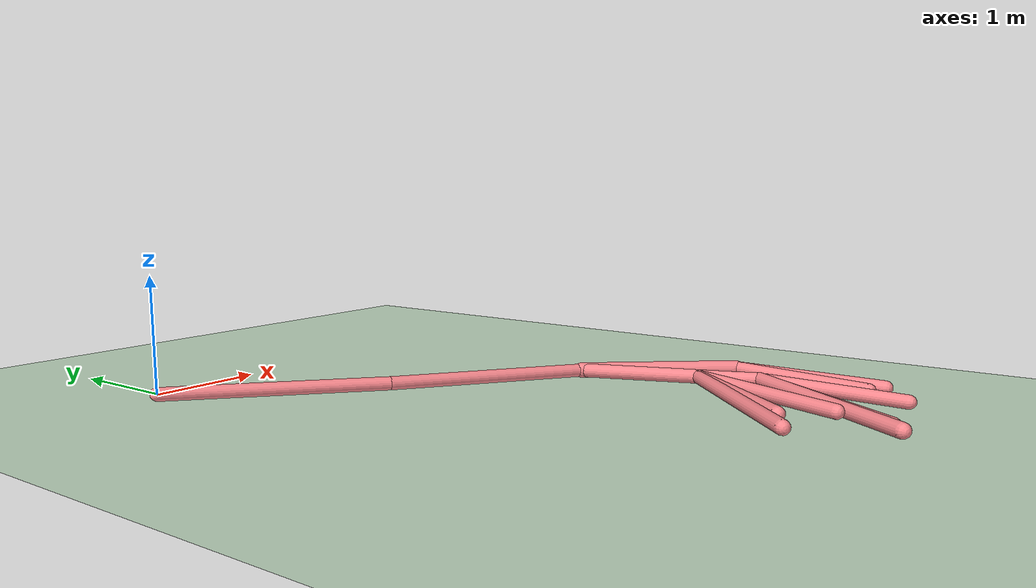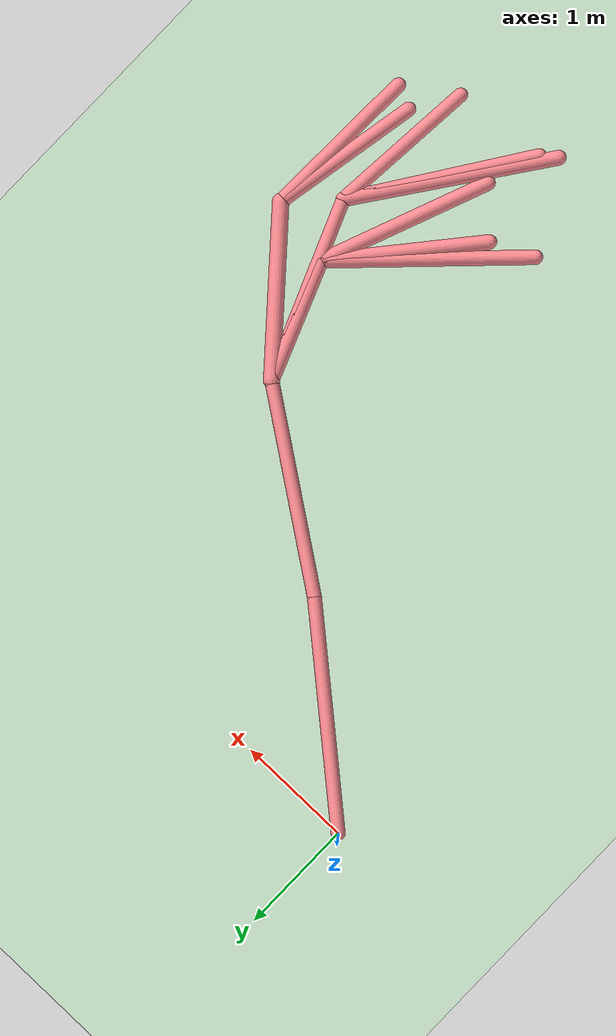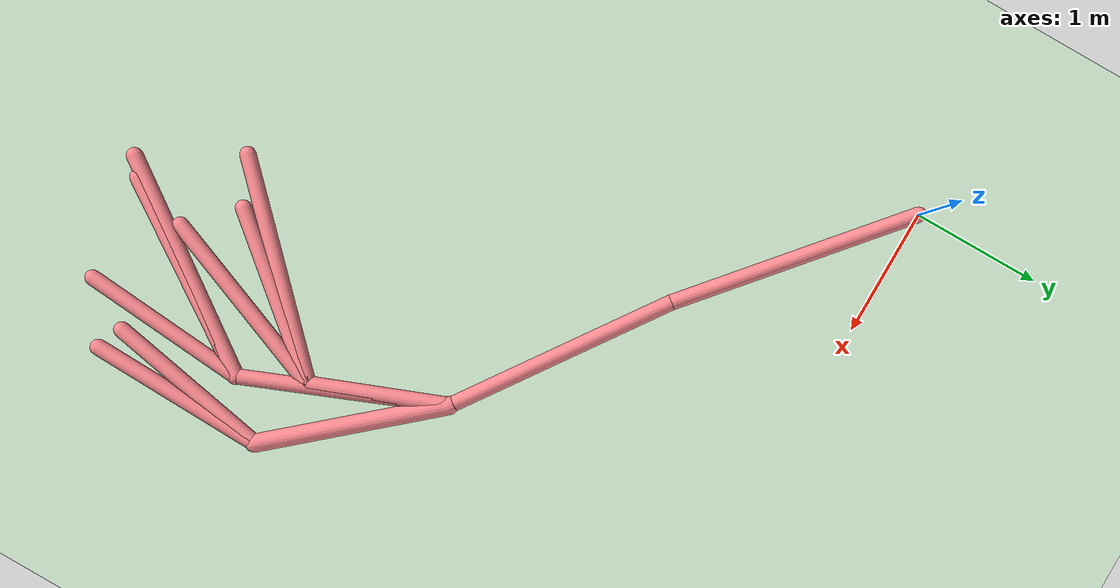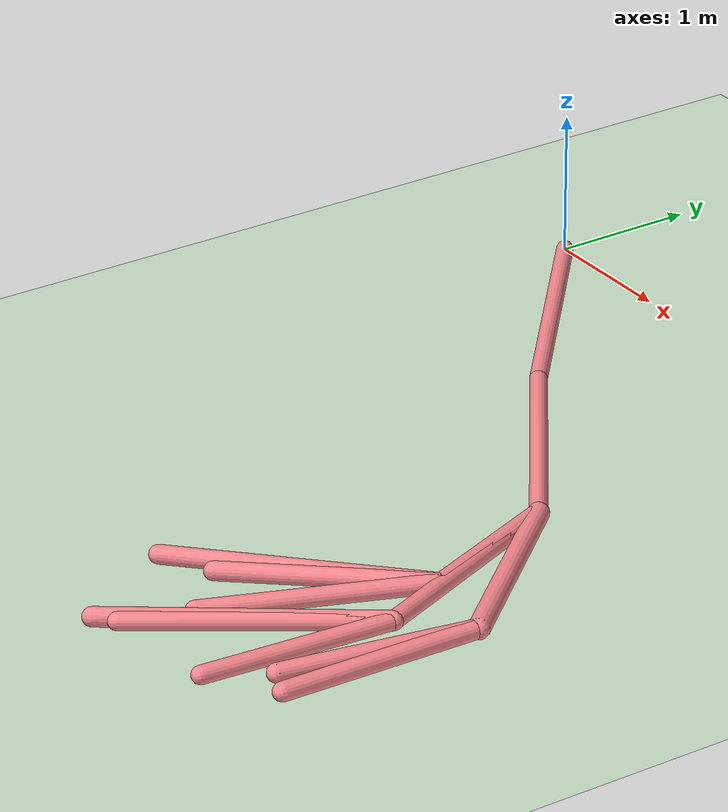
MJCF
<mujoco model="swimmer">
  <compiler angle="degree" coordinate="global" inertiafromgeom="true"/>
  <option collision="predefined" density="4000" integrator="RK4" timestep="0.01" viscosity="0.1"/>
  <default>
    <geom conaffinity="1" condim="1" contype="1" margin="0.001" rgba=".98 .54 .56 1."/>
    <joint armature="0.1"/>
  </default>
  <visual>
    <headlight ambient=".1 .1 .1" diffuse=".6 .6 .6" specular="0.3 0.3 0.3"/>
    <map znear=".01"/>
    <quality shadowsize="16384"/>
  </visual>
  <worldbody>
    <light cutoff="100" diffuse="1 1 1" dir="-1 0 -1.3" directional="true" exponent="1" pos="1 0 1.3" specular=".1 .1 .1" castshadow="true"/>
    <geom conaffinity="1" condim="3" name="floor" pos="0 0 -0.1" rgba="0.8 0.9 0.8 1" size="40 40 0.1" type="plane" material="grid_new"/>
    <body name="0" pos="0 0 0">
      <camera name="track" mode="trackcom" pos="0 -3 3" xyaxes="1 0 0 0 1 1"/>
      <joint axis="1 0 0" name="slider1" pos="0 0 0" type="slide"/>
      <joint axis="0 1 0" name="slider2" pos="0 0 0" type="slide"/>
      <joint axis="0 0 1" name="0_joint" pos="0 0 0" type="hinge"/>
      <geom density="1000" fromto="-0 0 0 1.499258 -1.278147 0" size="0.060031" type="capsule"/>
      <body name="1" pos="1.499258 -1.278147 0">
        <joint axis="0 0 1" limited="true" name="1_joint" pos="1.499258 -1.278147 0" range="-100 100" type="hinge"/>
        <geom density="1000" fromto="1.499177 -1.278091 0 2.999011 -2.330088 0" size="0.060011" type="capsule"/>
        <body name="11" pos="2.999011 -2.330088 0">
          <joint axis="0 0 1" limited="true" name="11_joint" pos="2.999011 -2.330088 0" range="-100 100" type="hinge"/>
          <geom density="1000" fromto="2.99899 -2.330033 0 3.391005 -3.329262 0" size="0.064363" type="capsule"/>
          <body name="111" pos="3.391005 -3.329262 0">
            <joint axis="0 0 1" limited="true" name="111_joint" pos="3.391005 -3.329262 0" range="-100 100" type="hinge"/>
            <geom density="1000" fromto="3.391181 -3.329088 0 2.125875 -4.582576 0" size="0.062461" type="capsule"/>
          </body>
          <body name="211" pos="3.391005 -3.329262 0">
            <joint axis="0 0 1" limited="true" name="211_joint" pos="3.391005 -3.329262 0" range="-100 100" type="hinge"/>
            <geom density="1000" fromto="3.39102 -3.329244 0 2.489656 -4.409034 0" size="0.063421" type="capsule"/>
          </body>
          <body name="311" pos="3.391005 -3.329262 0">
            <joint axis="0 0 1" limited="true" name="311_joint" pos="3.391005 -3.329262 0" range="-100 100" type="hinge"/>
            <geom density="1000" fromto="3.391042 -3.329167 0 2.83666 -4.754539 0" size="0.062732" type="capsule"/>
          </body>
        </body>
        <body name="21" pos="2.999011 -2.330088 0">
          <joint axis="0 0 1" limited="true" name="21_joint" pos="2.999011 -2.330088 0" range="-100 100" type="hinge"/>
          <geom density="1000" fromto="2.998983 -2.33002 0 3.610521 -3.827555 0" size="0.060254" type="capsule"/>
          <body name="121" pos="3.610521 -3.827555 0">
            <joint axis="0 0 1" limited="true" name="121_joint" pos="3.610521 -3.827555 0" range="-100 100" type="hinge"/>
            <geom density="1000" fromto="3.610522 -3.827555 0 2.558635 -5.312881 0" size="0.063897" type="capsule"/>
          </body>
          <body name="221" pos="3.610521 -3.827555 0">
            <joint axis="0 0 1" limited="true" name="221_joint" pos="3.610521 -3.827555 0" range="-100 100" type="hinge"/>
            <geom density="1000" fromto="3.610533 -3.827404 0 3.507064 -5.126575 0" size="0.060018" type="capsule"/>
          </body>
          <body name="321" pos="3.610521 -3.827555 0">
            <joint axis="0 0 1" limited="true" name="321_joint" pos="3.610521 -3.827555 0" range="-100 100" type="hinge"/>
            <geom density="1000" fromto="3.610826 -3.827098 0 2.686884 -5.214214 0" size="0.060147" type="capsule"/>
          </body>
        </body>
        <body name="31" pos="2.999011 -2.330088 0">
          <joint axis="0 0 1" limited="true" name="31_joint" pos="2.999011 -2.330088 0" range="-100 100" type="hinge"/>
          <geom density="1000" fromto="2.99901 -2.330087 0 3.973258 -3.453518 0" size="0.070807" type="capsule"/>
          <body name="131" pos="3.973258 -3.453518 0">
            <joint axis="0 0 1" limited="true" name="131_joint" pos="3.973258 -3.453518 0" range="-100 100" type="hinge"/>
            <geom density="1000" fromto="3.973258 -3.453518 0 3.937415 -4.828418 0" size="0.062552" type="capsule"/>
          </body>
          <body name="231" pos="3.973258 -3.453518 0">
            <joint axis="0 0 1" limited="true" name="231_joint" pos="3.973258 -3.453518 0" range="-100 100" type="hinge"/>
            <geom density="1000" fromto="3.973299 -3.453294 0 3.736258 -4.742378 0" size="0.062121" type="capsule"/>
          </body>
        </body>
      </body>
    </body>
  </worldbody>
  <actuator>
    <motor ctrllimited="true" ctrlrange="-1 1" gear="299.98672" joint="1_joint" name="1_joint"/>
    <motor ctrllimited="true" ctrlrange="-1 1" gear="265.817374" joint="11_joint" name="11_joint"/>
    <motor ctrllimited="true" ctrlrange="-1 1" gear="261.765197" joint="21_joint" name="21_joint"/>
    <motor ctrllimited="true" ctrlrange="-1 1" gear="190.954724" joint="111_joint" name="111_joint"/>
    <motor ctrllimited="true" ctrlrange="-1 1" gear="268.1112" joint="31_joint" name="31_joint"/>
    <motor ctrllimited="true" ctrlrange="-1 1" gear="220.457334" joint="211_joint" name="211_joint"/>
    <motor ctrllimited="true" ctrlrange="-1 1" gear="166.377492" joint="121_joint" name="121_joint"/>
    <motor ctrllimited="true" ctrlrange="-1 1" gear="241.894397" joint="311_joint" name="311_joint"/>
    <motor ctrllimited="true" ctrlrange="-1 1" gear="202.875557" joint="221_joint" name="221_joint"/>
    <motor ctrllimited="true" ctrlrange="-1 1" gear="212.411892" joint="131_joint" name="131_joint"/>
    <motor ctrllimited="true" ctrlrange="-1 1" gear="172.641709" joint="321_joint" name="321_joint"/>
    <motor ctrllimited="true" ctrlrange="-1 1" gear="165.915995" joint="231_joint" name="231_joint"/>
  </actuator>
  <asset>
    <texture type="skybox" builtin="gradient" rgb1=".4 .5 .6" rgb2="0 0 0" width="100" height="100"/>
    <texture builtin="flat" height="1278" mark="cross" markrgb="1 1 1" name="texgeom" random="0.01" rgb1="0.8 0.6 0.4" rgb2="0.8 0.6 0.4" type="cube" width="127"/>
    <texture builtin="checker" height="100" name="texplane" rgb1="0 0 0" rgb2="0.8 0.8 0.8" type="2d" width="100"/>
    <material name="MatPlane" reflectance="0.5" shininess="1" specular="1" texrepeat="60 60" texture="texplane"/>
    <material name="geom" texture="texgeom" texuniform="true"/>
    <texture name="grid_new" type="2d" builtin="checker" rgb1=".1 .3 .2" rgb2=".2 .4 .3" width="1000" height="1000" mark="none" markrgb=".8 .6 .4"/>
    <material name="grid_new" texture="grid_new" texrepeat="0.2 0.2" texuniform="true" reflectance=".2"/>
  </asset>
</mujoco>
